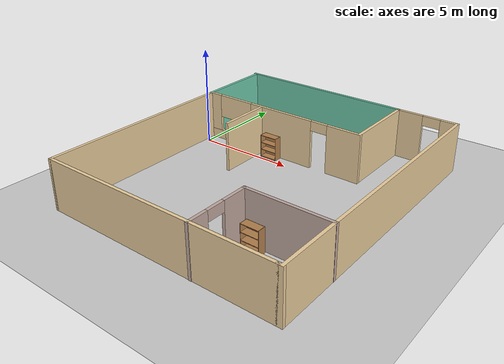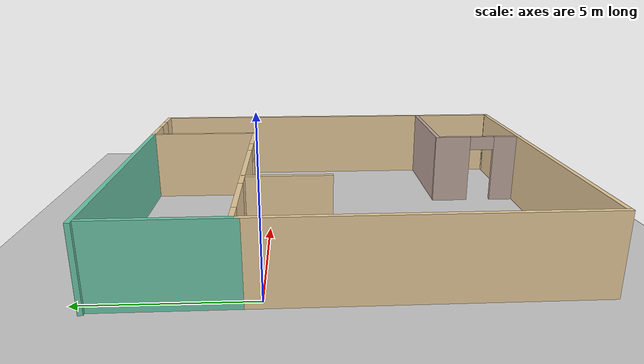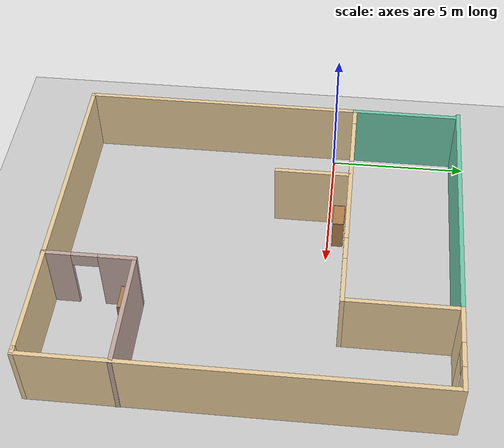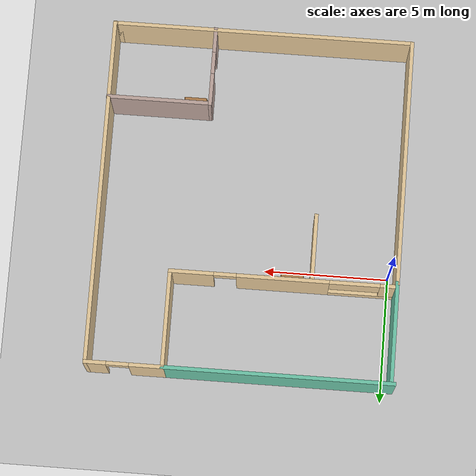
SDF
<sdf version="1.7">
 <world name="default">
  <light name="sun" type="directional">
   <pose>0 0 10 0 -0 0</pose>
   <diffuse>0.8 0.8 0.8 1</diffuse>
   <specular>0.2 0.2 0.2 1</specular>
   <attenuation>
    <range>1000</range>
    <constant>0.9</constant>
    <linear>0.01</linear>
    <quadratic>0.001</quadratic>
   </attenuation>
   <direction>-0.5 0.1 -0.9</direction>
   <spot><inner_angle>0</inner_angle><outer_angle>0</outer_angle><falloff>0</falloff></spot>
  </light>
  <model name="ground_plane">
   <static>1</static>
   <link name="link">
    <collision name="collision">
     <geometry><plane><normal>0 0 1</normal><size>100 100</size></plane></geometry>
     <surface>
      <contact><collide_bitmask>65535</collide_bitmask></contact>
      <friction><ode><mu>100</mu><mu2>50</mu2></ode></friction>
     </surface>
    </collision>
    <visual name="visual">
     <cast_shadows>0</cast_shadows>
     <geometry><plane><normal>0 0 1</normal><size>100 100</size></plane></geometry>
     <material>
      <script><uri>file://media/materials/scripts/gazebo.material</uri><name>Gazebo/Grey</name></script>
     </material>
    </visual>
   </link>
  </model>
  <gravity>0 0 -9.8</gravity>
  <magnetic_field>6e-06 2.3e-05 -4.2e-05</magnetic_field>
  <atmosphere type="adiabatic"/>
  <physics type="ode">
   <max_step_size>0.001</max_step_size>
   <real_time_factor>1</real_time_factor>
   <real_time_update_rate>1000</real_time_update_rate>
  </physics>
  <scene><ambient>0.4 0.4 0.4 1</ambient><background>0.7 0.7 0.7 1</background><shadows>1</shadows></scene>
  <spherical_coordinates>
   <surface_model>EARTH_WGS84</surface_model>
   <latitude_deg>0</latitude_deg>
   <longitude_deg>0</longitude_deg>
   <elevation>0</elevation>
   <heading_deg>0</heading_deg>
  </spherical_coordinates>
  <model name="final_restaurant">
   <pose>5.67794 -2.39628 0 0 -0 0</pose>
   <link name="Wall_13">
    <pose>4.54356 6.9354 0 0 -0 3.14159</pose>
    <visual name="Wall_13_Visual_0">
     <pose>-1.14414 0 1.25 0 -0 0</pose>
     <geometry><box><size>0.89781 0.15 2.5</size></box></geometry>
     <material>
      <script><uri>file://media/materials/scripts/gazebo.material</uri><name>Gazebo/Grey</name></script>
      <ambient>0.921569 0.807843 0.615686 1</ambient>
     </material>
     <meta><layer>0</layer></meta>
    </visual>
    <collision name="Wall_13_Collision_0">
     <geometry><box><size>0.89781 0.15 2.5</size></box></geometry>
     <pose>-1.14414 0 1.25 0 -0 0</pose>
    </collision>
    <visual name="Wall_13_Visual_1">
     <pose>0.898905 0 1.25 0 -0 0</pose>
     <geometry><box><size>1.38828 0.15 2.5</size></box></geometry>
     <material>
      <script><uri>file://media/materials/scripts/gazebo.material</uri><name>Gazebo/Grey</name></script>
      <ambient>0.921569 0.807843 0.615686 1</ambient>
     </material>
     <meta><layer>0</layer></meta>
    </visual>
    <collision name="Wall_13_Collision_1">
     <geometry><box><size>1.38828 0.15 2.5</size></box></geometry>
     <pose>0.898905 0 1.25 0 -0 0</pose>
    </collision>
    <visual name="Wall_13_Visual_2">
     <pose>-0.245237 0 2.25 0 -0 0</pose>
     <geometry><box><size>0.9 0.15 0.5</size></box></geometry>
     <material>
      <script><uri>file://media/materials/scripts/gazebo.material</uri><name>Gazebo/Grey</name></script>
      <ambient>0.921569 0.807843 0.615686 1</ambient>
     </material>
     <meta><layer>0</layer></meta>
    </visual>
    <collision name="Wall_13_Collision_2">
     <geometry><box><size>0.9 0.15 0.5</size></box></geometry>
     <pose>-0.245237 0 2.25 0 -0 0</pose>
    </collision>
   </link>
   <link name="Wall_15">
    <collision name="Wall_15_Collision">
     <geometry><box><size>4 0.15 2.5</size></box></geometry>
     <pose>0 0 1.25 0 -0 0</pose>
    </collision>
    <visual name="Wall_15_Visual">
     <pose>0 0 1.25 0 -0 0</pose>
     <geometry><box><size>4 0.15 2.5</size></box></geometry>
     <material>
      <script><uri>file://media/materials/scripts/gazebo.material</uri><name>Gazebo/Grey</name></script>
      <ambient>0.921569 0.807843 0.615686 1</ambient>
     </material>
     <meta><layer>0</layer></meta>
    </visual>
    <pose>3.02551 5.0104 0 0 -0 -1.5708</pose>
   </link>
   <link name="Wall_19">
    <collision name="Wall_19_Collision">
     <geometry><box><size>9.25 0.15 2.5</size></box></geometry>
     <pose>0 0 1.25 0 -0 0</pose>
    </collision>
    <visual name="Wall_19_Visual">
     <pose>0 0 1.25 0 -0 0</pose>
     <geometry><box><size>9.25 0.15 2.5</size></box></geometry>
     <material>
      <script><uri>file://media/materials/scripts/gazebo.material</uri><name>Gazebo/Grey</name></script>
      <ambient>0.435294 0.796078 0.67451 1</ambient>
     </material>
     <meta><layer>0</layer></meta>
    </visual>
    <pose>-1.52449 6.9354 0 0 -0 3.14159</pose>
   </link>
   <link name="Wall_21">
    <pose>-1.39949 3.0854 0 0 -0 3.14159</pose>
    <visual name="Wall_21_Visual_0">
     <pose>-3.59913 0 1.25 0 -0 0</pose>
     <geometry><box><size>1.80174 0.15 2.5</size></box></geometry>
     <material>
      <script><uri>file://media/materials/scripts/gazebo.material</uri><name>Gazebo/Grey</name></script>
      <ambient>0.921569 0.807843 0.615686 1</ambient>
     </material>
     <meta><layer>0</layer></meta>
    </visual>
    <collision name="Wall_21_Collision_0">
     <geometry><box><size>1.80174 0.15 2.5</size></box></geometry>
     <pose>-3.59913 0 1.25 0 -0 0</pose>
    </collision>
    <visual name="Wall_21_Visual_1">
     <pose>0.044786 0 1.25 0 -0 0</pose>
     <geometry><box><size>3.6861 0.15 2.5</size></box></geometry>
     <material>
      <script><uri>file://media/materials/scripts/gazebo.material</uri><name>Gazebo/Grey</name></script>
      <ambient>0.921569 0.807843 0.615686 1</ambient>
     </material>
     <meta><layer>0</layer></meta>
    </visual>
    <collision name="Wall_21_Collision_1">
     <geometry><box><size>3.6861 0.15 2.5</size></box></geometry>
     <pose>0.044786 0 1.25 0 -0 0</pose>
    </collision>
    <visual name="Wall_21_Visual_2">
     <pose>3.19392 0 0.25 0 -0 0</pose>
     <geometry><box><size>2.61216 0.15 0.5</size></box></geometry>
     <material>
      <script><uri>file://media/materials/scripts/gazebo.material</uri><name>Gazebo/Grey</name></script>
      <ambient>0.921569 0.807843 0.615686 1</ambient>
     </material>
     <meta><layer>0</layer></meta>
    </visual>
    <collision name="Wall_21_Collision_2">
     <geometry><box><size>2.61216 0.15 0.5</size></box></geometry>
     <pose>3.19392 0 0.25 0 -0 0</pose>
    </collision>
    <visual name="Wall_21_Visual_3">
     <pose>4.19392 0 1.5 0 -0 0</pose>
     <geometry><box><size>0.612164 0.15 2</size></box></geometry>
     <material>
      <script><uri>file://media/materials/scripts/gazebo.material</uri><name>Gazebo/Grey</name></script>
      <ambient>0.921569 0.807843 0.615686 1</ambient>
     </material>
     <meta><layer>0</layer></meta>
    </visual>
    <collision name="Wall_21_Collision_3">
     <geometry><box><size>0.612164 0.15 2</size></box></geometry>
     <pose>4.19392 0 1.5 0 -0 0</pose>
    </collision>
    <visual name="Wall_21_Visual_4">
     <pose>2.88784 0 1.9 0 -0 0</pose>
     <geometry><box><size>2 0.15 1.2</size></box></geometry>
     <material>
      <script><uri>file://media/materials/scripts/gazebo.material</uri><name>Gazebo/Grey</name></script>
      <ambient>0.921569 0.807843 0.615686 1</ambient>
     </material>
     <meta><layer>0</layer></meta>
    </visual>
    <collision name="Wall_21_Collision_4">
     <geometry><box><size>2 0.15 1.2</size></box></geometry>
     <pose>2.88784 0 1.9 0 -0 0</pose>
    </collision>
    <visual name="Wall_21_Visual_5">
     <pose>-2.24826 0 2.25 0 -0 0</pose>
     <geometry><box><size>0.9 0.15 0.5</size></box></geometry>
     <material>
      <script><uri>file://media/materials/scripts/gazebo.material</uri><name>Gazebo/Grey</name></script>
      <ambient>0.921569 0.807843 0.615686 1</ambient>
     </material>
     <meta><layer>0</layer></meta>
    </visual>
    <collision name="Wall_21_Collision_5">
     <geometry><box><size>0.9 0.15 0.5</size></box></geometry>
     <pose>-2.24826 0 2.25 0 -0 0</pose>
    </collision>
   </link>
   <link name="Wall_37">
    <collision name="Wall_37_Collision">
     <geometry><box><size>10 0.15 2.5</size></box></geometry>
     <pose>0 0 1.25 0 -0 0</pose>
    </collision>
    <visual name="Wall_37_Visual">
     <pose>0 0 1.25 0 -0 0</pose>
     <geometry><box><size>10 0.15 2.5</size></box></geometry>
     <material>
      <script><uri>file://media/materials/scripts/gazebo.material</uri><name>Gazebo/Grey</name></script>
      <ambient>0.921569 0.807843 0.615686 1</ambient>
     </material>
     <meta><layer>0</layer></meta>
    </visual>
    <pose>-5.97449 -1.9896 0 0 -0 -1.5708</pose>
   </link>
   <link name="Wall_39">
    <collision name="Wall_39_Collision">
     <geometry><box><size>12 0.15 2.5</size></box></geometry>
     <pose>0 0 1.25 0 -0 0</pose>
    </collision>
    <visual name="Wall_39_Visual">
     <pose>0 0 1.25 0 -0 0</pose>
     <geometry><box><size>12 0.15 2.5</size></box></geometry>
     <material>
      <script><uri>file://media/materials/scripts/gazebo.material</uri><name>Gazebo/Grey</name></script>
      <ambient>0.921569 0.807843 0.615686 1</ambient>
     </material>
     <meta><layer>0</layer></meta>
    </visual>
    <pose>-0.049492 -6.9146 0 0 -0 0</pose>
   </link>
   <link name="Wall_42">
    <collision name="Wall_42_Collision">
     <geometry><box><size>14 0.15 2.5</size></box></geometry>
     <pose>0 0 1.25 0 -0 0</pose>
    </collision>
    <visual name="Wall_42_Visual">
     <pose>0 0 1.25 0 -0 0</pose>
     <geometry><box><size>14 0.15 2.5</size></box></geometry>
     <material>
      <script><uri>file://media/materials/scripts/gazebo.material</uri><name>Gazebo/Grey</name></script>
      <ambient>0.921569 0.807843 0.615686 1</ambient>
     </material>
     <meta><layer>0</layer></meta>
    </visual>
    <pose>6.0616 0.010404 0 0 -0 -1.5708</pose>
   </link>
   <link name="Wall_43">
    <collision name="Wall_43_Collision">
     <geometry><box><size>0.336096 0.15 2.5</size></box></geometry>
     <pose>0 0 1.25 0 -0 0</pose>
    </collision>
    <visual name="Wall_43_Visual">
     <pose>0 0 1.25 0 -0 0</pose>
     <geometry><box><size>0.336096 0.15 2.5</size></box></geometry>
     <material>
      <script><uri>file://media/materials/scripts/gazebo.material</uri><name>Gazebo/Grey</name></script>
      <ambient>0.921569 0.807843 0.615686 1</ambient>
     </material>
     <meta><layer>0</layer></meta>
    </visual>
    <pose>5.96856 -6.9146 0 0 -0 3.14159</pose>
   </link>
   <link name="Wall_45">
    <collision name="Wall_45_Collision">
     <geometry><box><size>2.75 0.15 2.5</size></box></geometry>
     <pose>0 0 1.25 0 -0 0</pose>
    </collision>
    <visual name="Wall_45_Visual">
     <pose>0 0 1.25 0 -0 0</pose>
     <geometry><box><size>2.75 0.15 2.5</size></box></geometry>
     <material>
      <script><uri>file://media/materials/scripts/gazebo.material</uri><name>Gazebo/Grey</name></script>
      <ambient>0.921569 0.807843 0.615686 1</ambient>
     </material>
     <meta><layer>0</layer></meta>
    </visual>
    <pose>-2.59875 1.75536 0 0 -0 -1.5708</pose>
   </link>
   <link name="Wall_48">
    <pose>1.97449 -5.3854 0 0 -0 1.5708</pose>
    <visual name="Wall_48_Visual_0">
     <pose>-1.10892 0 1.25 0 -0 0</pose>
     <geometry><box><size>1.03215 0.15 2.5</size></box></geometry>
     <material>
      <script><uri>file://media/materials/scripts/gazebo.material</uri><name>Gazebo/Grey</name></script>
      <ambient>0.760784 0.662745 0.627451 1</ambient>
     </material>
     <meta><layer>0</layer></meta>
    </visual>
    <collision name="Wall_48_Collision_0">
     <geometry><box><size>1.03215 0.15 2.5</size></box></geometry>
     <pose>-1.10892 0 1.25 0 -0 0</pose>
    </collision>
    <visual name="Wall_48_Visual_1">
     <pose>0.966075 0 1.25 0 -0 0</pose>
     <geometry><box><size>1.31785 0.15 2.5</size></box></geometry>
     <material>
      <script><uri>file://media/materials/scripts/gazebo.material</uri><name>Gazebo/Grey</name></script>
      <ambient>0.760784 0.662745 0.627451 1</ambient>
     </material>
     <meta><layer>0</layer></meta>
    </visual>
    <collision name="Wall_48_Collision_1">
     <geometry><box><size>1.31785 0.15 2.5</size></box></geometry>
     <pose>0.966075 0 1.25 0 -0 0</pose>
    </collision>
    <visual name="Wall_48_Visual_2">
     <pose>-0.142849 0 2.25 0 -0 0</pose>
     <geometry><box><size>0.9 0.15 0.5</size></box></geometry>
     <material>
      <script><uri>file://media/materials/scripts/gazebo.material</uri><name>Gazebo/Grey</name></script>
      <ambient>0.760784 0.662745 0.627451 1</ambient>
     </material>
     <meta><layer>0</layer></meta>
    </visual>
    <collision name="Wall_48_Collision_2">
     <geometry><box><size>0.9 0.15 0.5</size></box></geometry>
     <pose>-0.142849 0 2.25 0 -0 0</pose>
    </collision>
   </link>
   <link name="Wall_49">
    <collision name="Wall_49_Collision">
     <geometry><box><size>4.25 0.15 2.5</size></box></geometry>
     <pose>0 0 1.25 0 -0 0</pose>
    </collision>
    <visual name="Wall_49_Visual">
     <pose>0 0 1.25 0 -0 0</pose>
     <geometry><box><size>4.25 0.15 2.5</size></box></geometry>
     <material>
      <script><uri>file://media/materials/scripts/gazebo.material</uri><name>Gazebo/Grey</name></script>
      <ambient>0.760784 0.662745 0.627451 1</ambient>
     </material>
     <meta><layer>0</layer></meta>
    </visual>
    <pose>4.02449 -3.8354 0 0 -0 0</pose>
   </link>
   <link name="Wall_6">
    <collision name="Wall_6_Collision">
     <geometry><box><size>4 0.15 2.5</size></box></geometry>
     <pose>0 0 1.25 0 -0 0</pose>
    </collision>
    <visual name="Wall_6_Visual">
     <pose>0 0 1.25 0 -0 0</pose>
     <geometry><box><size>4 0.15 2.5</size></box></geometry>
     <material>
      <script><uri>file://media/materials/scripts/gazebo.material</uri><name>Gazebo/Grey</name></script>
      <ambient>0.435294 0.796078 0.67451 1</ambient>
     </material>
     <meta><layer>0</layer></meta>
    </visual>
    <pose>-5.97449 4.8604 0 0 -0 1.5708</pose>
   </link>
   <static>1</static>
  </model>
  <model name="bookshelf">
   <static>1</static>
   <link name="link">
    <inertial><mass>1</mass></inertial>
    <collision name="back">
     <pose>0 0.005 0.6 0 -0 0</pose>
     <geometry><box><size>0.9 0.01 1.2</size></box></geometry>
    </collision>
    <visual name="visual1">
     <pose>0 0.005 0.6 0 -0 0</pose>
     <geometry><box><size>0.9 0.01 1.2</size></box></geometry>
     <material>
      <script><uri>file://media/materials/scripts/gazebo.material</uri><name>Gazebo/Wood</name></script>
     </material>
    </visual>
    <collision name="left_side">
     <pose>0.45 -0.195 0.6 0 -0 0</pose>
     <geometry><box><size>0.02 0.4 1.2</size></box></geometry>
    </collision>
    <visual name="visual2">
     <pose>0.45 -0.195 0.6 0 -0 0</pose>
     <geometry><box><size>0.02 0.4 1.2</size></box></geometry>
     <material>
      <script><uri>file://media/materials/scripts/gazebo.material</uri><name>Gazebo/Wood</name></script>
     </material>
    </visual>
    <collision name="right_side">
     <pose>-0.45 -0.195 0.6 0 -0 0</pose>
     <geometry><box><size>0.02 0.4 1.2</size></box></geometry>
    </collision>
    <visual name="visual3">
     <pose>-0.45 -0.195 0.6 0 -0 0</pose>
     <geometry><box><size>0.02 0.4 1.2</size></box></geometry>
     <material>
      <script><uri>file://media/materials/scripts/gazebo.material</uri><name>Gazebo/Wood</name></script>
     </material>
    </visual>
    <collision name="bottom">
     <pose>0 -0.195 0.03 0 -0 0</pose>
     <geometry><box><size>0.88 0.4 0.06</size></box></geometry>
    </collision>
    <visual name="visual4">
     <pose>0 -0.195 0.03 0 -0 0</pose>
     <geometry><box><size>0.88 0.4 0.06</size></box></geometry>
     <material>
      <script><uri>file://media/materials/scripts/gazebo.material</uri><name>Gazebo/Wood</name></script>
     </material>
    </visual>
    <collision name="top">
     <pose>0 -0.195 1.19 0 -0 0</pose>
     <geometry><box><size>0.88 0.4 0.02</size></box></geometry>
    </collision>
    <visual name="visual5">
     <pose>0 -0.195 1.19 0 -0 0</pose>
     <geometry><box><size>0.88 0.4 0.02</size></box></geometry>
     <material>
      <script><uri>file://media/materials/scripts/gazebo.material</uri><name>Gazebo/Wood</name></script>
     </material>
    </visual>
    <collision name="low_shelf">
     <pose>0 -0.195 0.43 0 -0 0</pose>
     <geometry><box><size>0.88 0.4 0.02</size></box></geometry>
    </collision>
    <visual name="visual6">
     <pose>0 -0.195 0.43 0 -0 0</pose>
     <geometry><box><size>0.88 0.4 0.02</size></box></geometry>
     <material>
      <script><uri>file://media/materials/scripts/gazebo.material</uri><name>Gazebo/Wood</name></script>
     </material>
    </visual>
    <collision name="high_shelf">
     <pose>0 -0.195 0.8 0 -0 0</pose>
     <geometry><box><size>0.88 0.4 0.02</size></box></geometry>
    </collision>
    <visual name="visual7">
     <pose>0 -0.195 0.8 0 -0 0</pose>
     <geometry><box><size>0.88 0.4 0.02</size></box></geometry>
     <material>
      <script><uri>file://media/materials/scripts/gazebo.material</uri><name>Gazebo/Wood</name></script>
     </material>
    </visual>
   </link>
   <pose>8.29214 -6.3721 0 0 -0 0</pose>
  </model>
  <model name="bookshelf_0">
   <static>1</static>
   <link name="link">
    <inertial><mass>1</mass></inertial>
    <collision name="back">
     <pose>0 0.005 0.6 0 -0 0</pose>
     <geometry><box><size>0.9 0.01 1.2</size></box></geometry>
    </collision>
    <visual name="visual1">
     <pose>0 0.005 0.6 0 -0 0</pose>
     <geometry><box><size>0.9 0.01 1.2</size></box></geometry>
     <material>
      <script><uri>file://media/materials/scripts/gazebo.material</uri><name>Gazebo/Wood</name></script>
     </material>
    </visual>
    <collision name="left_side">
     <pose>0.45 -0.195 0.6 0 -0 0</pose>
     <geometry><box><size>0.02 0.4 1.2</size></box></geometry>
    </collision>
    <visual name="visual2">
     <pose>0.45 -0.195 0.6 0 -0 0</pose>
     <geometry><box><size>0.02 0.4 1.2</size></box></geometry>
     <material>
      <script><uri>file://media/materials/scripts/gazebo.material</uri><name>Gazebo/Wood</name></script>
     </material>
    </visual>
    <collision name="right_side">
     <pose>-0.45 -0.195 0.6 0 -0 0</pose>
     <geometry><box><size>0.02 0.4 1.2</size></box></geometry>
    </collision>
    <visual name="visual3">
     <pose>-0.45 -0.195 0.6 0 -0 0</pose>
     <geometry><box><size>0.02 0.4 1.2</size></box></geometry>
     <material>
      <script><uri>file://media/materials/scripts/gazebo.material</uri><name>Gazebo/Wood</name></script>
     </material>
    </visual>
    <collision name="bottom">
     <pose>0 -0.195 0.03 0 -0 0</pose>
     <geometry><box><size>0.88 0.4 0.06</size></box></geometry>
    </collision>
    <visual name="visual4">
     <pose>0 -0.195 0.03 0 -0 0</pose>
     <geometry><box><size>0.88 0.4 0.06</size></box></geometry>
     <material>
      <script><uri>file://media/materials/scripts/gazebo.material</uri><name>Gazebo/Wood</name></script>
     </material>
    </visual>
    <collision name="top">
     <pose>0 -0.195 1.19 0 -0 0</pose>
     <geometry><box><size>0.88 0.4 0.02</size></box></geometry>
    </collision>
    <visual name="visual5">
     <pose>0 -0.195 1.19 0 -0 0</pose>
     <geometry><box><size>0.88 0.4 0.02</size></box></geometry>
     <material>
      <script><uri>file://media/materials/scripts/gazebo.material</uri><name>Gazebo/Wood</name></script>
     </material>
    </visual>
    <collision name="low_shelf">
     <pose>0 -0.195 0.43 0 -0 0</pose>
     <geometry><box><size>0.88 0.4 0.02</size></box></geometry>
    </collision>
    <visual name="visual6">
     <pose>0 -0.195 0.43 0 -0 0</pose>
     <geometry><box><size>0.88 0.4 0.02</size></box></geometry>
     <material>
      <script><uri>file://media/materials/scripts/gazebo.material</uri><name>Gazebo/Wood</name></script>
     </material>
    </visual>
    <collision name="high_shelf">
     <pose>0 -0.195 0.8 0 -0 0</pose>
     <geometry><box><size>0.88 0.4 0.02</size></box></geometry>
    </collision>
    <visual name="visual7">
     <pose>0 -0.195 0.8 0 -0 0</pose>
     <geometry><box><size>0.88 0.4 0.02</size></box></geometry>
     <material>
      <script><uri>file://media/materials/scripts/gazebo.material</uri><name>Gazebo/Wood</name></script>
     </material>
    </visual>
   </link>
   <pose>3.86274 0.563855 0 0 -0 0</pose>
  </model>
 </world>
</sdf>
